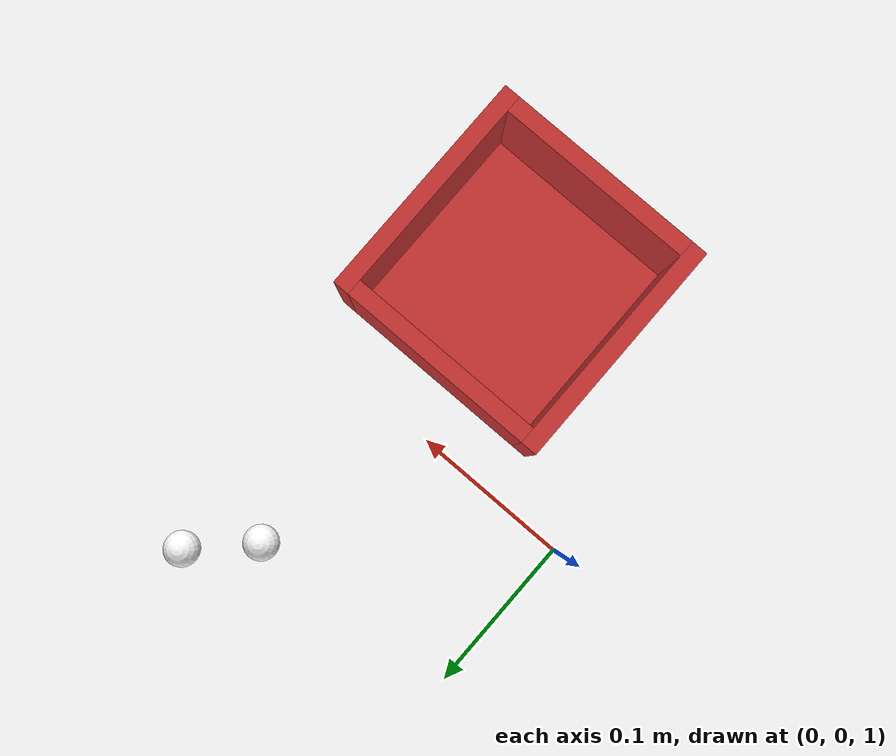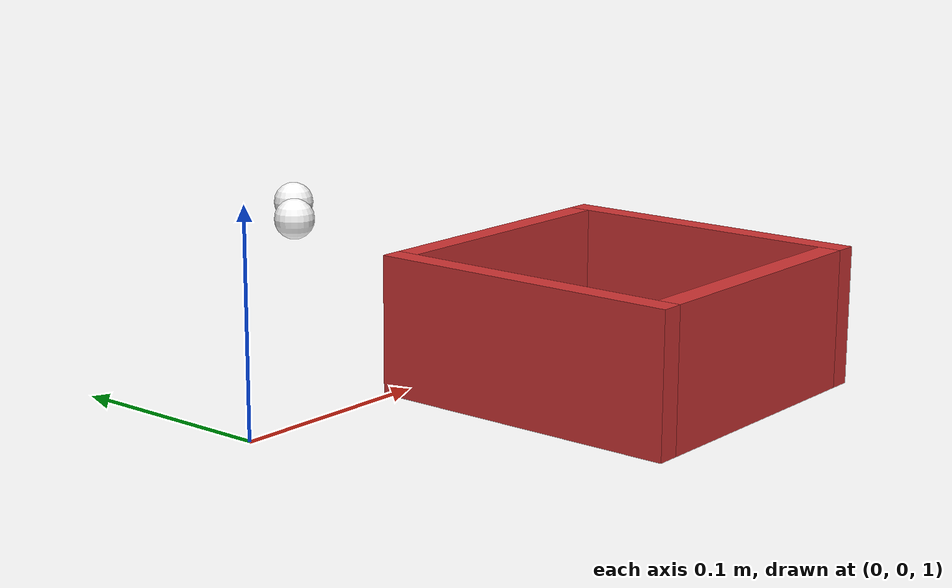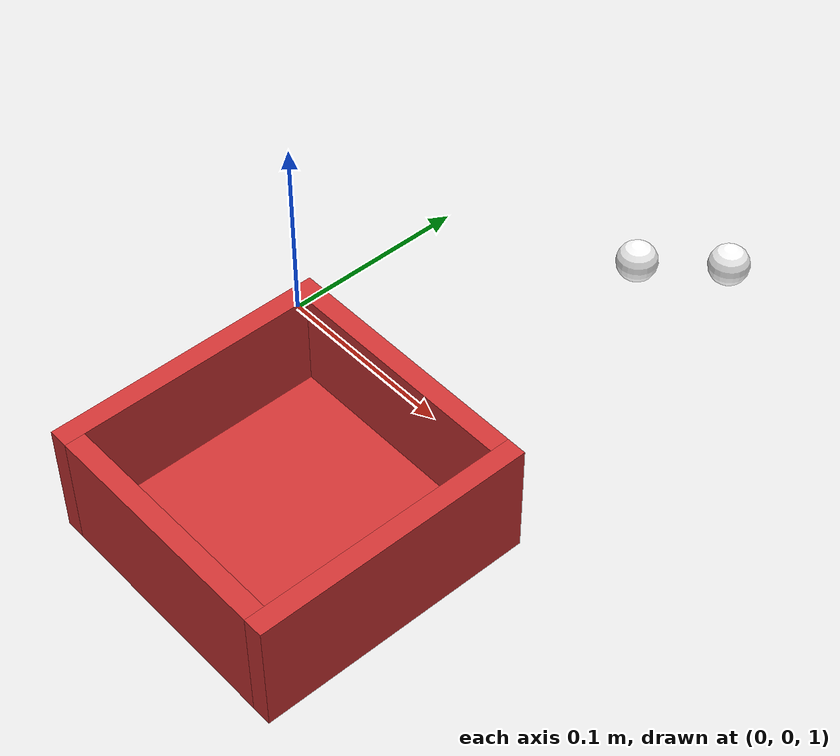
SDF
<sdf version="1.7">
 <world name="pick_and_place_balls">
  <physics name="1ms" type="ignored">
   <max_step_size>0.001</max_step_size>
   <real_time_factor>1.0</real_time_factor>
  </physics>
  <plugin filename="gz-sim-physics-system" name="gz::sim::systems::Physics"/>
  <plugin filename="gz-sim-user-commands-system" name="gz::sim::systems::UserCommands"/>
  <plugin filename="gz-sim-scene-broadcaster-system" name="gz::sim::systems::SceneBroadcaster"/>
  <plugin filename="gz-sim-sensors-system" name="gz::sim::systems::Sensors">
   <render_engine>ogre2</render_engine>
  </plugin>
  <include><uri>https://fuel.gazebosim.org/1.0/OpenRobotics/models/Ground Plane</uri></include>
  <include><uri>https://fuel.gazebosim.org/1.0/OpenRobotics/models/Sun</uri></include>
  <model name="empty_bowl">
   <pose>0.12 -0.10 1.02 0 0 0</pose>
   <static>true</static>
   <link name="bowl_link">
    <visual name="floor_visual">
     <geometry><box><size>0.12 0.12 0.01</size></box></geometry>
     <material><ambient>0.8 0.2 0.2 1</ambient><diffuse>0.8 0.2 0.2 1</diffuse></material>
    </visual>
    <collision name="floor_collision"><geometry><box><size>0.12 0.12 0.01</size></box></geometry></collision>
    <visual name="wall1_visual">
     <pose>0.065 0 0.025 0 0 0</pose>
     <geometry><box><size>0.01 0.14 0.06</size></box></geometry>
     <material><ambient>0.8 0.2 0.2 1</ambient><diffuse>0.8 0.2 0.2 1</diffuse></material>
    </visual>
    <collision name="wall1_collision">
     <pose>0.065 0 0.025 0 0 0</pose>
     <geometry><box><size>0.01 0.14 0.06</size></box></geometry>
    </collision>
    <visual name="wall2_visual">
     <pose>-0.065 0 0.025 0 0 0</pose>
     <geometry><box><size>0.01 0.14 0.06</size></box></geometry>
     <material><ambient>0.8 0.2 0.2 1</ambient><diffuse>0.8 0.2 0.2 1</diffuse></material>
    </visual>
    <collision name="wall2_collision">
     <pose>-0.065 0 0.025 0 0 0</pose>
     <geometry><box><size>0.01 0.14 0.06</size></box></geometry>
    </collision>
    <visual name="wall3_visual">
     <pose>0 0.065 0.025 0 0 0</pose>
     <geometry><box><size>0.12 0.01 0.06</size></box></geometry>
     <material><ambient>0.8 0.2 0.2 1</ambient><diffuse>0.8 0.2 0.2 1</diffuse></material>
    </visual>
    <collision name="wall3_collision">
     <pose>0 0.065 0.025 0 0 0</pose>
     <geometry><box><size>0.12 0.01 0.06</size></box></geometry>
    </collision>
    <visual name="wall4_visual">
     <pose>0 -0.065 0.025 0 0 0</pose>
     <geometry><box><size>0.12 0.01 0.06</size></box></geometry>
     <material><ambient>0.8 0.2 0.2 1</ambient><diffuse>0.8 0.2 0.2 1</diffuse></material>
    </visual>
    <collision name="wall4_collision">
     <pose>0 -0.065 0.025 0 0 0</pose>
     <geometry><box><size>0.12 0.01 0.06</size></box></geometry>
    </collision>
   </link>
  </model>
  <model name="ball_0">
   <pose>0.16 0.13 1.06 0 0 0</pose>
   <link name="ball_link">
    <inertial>
     <mass>0.005</mass>
     <inertia><ixx>0.00001</ixx><iyy>0.00001</iyy><izz>0.00001</izz></inertia>
    </inertial>
    <visual name="ball_visual">
     <geometry><sphere><radius>0.01</radius></sphere></geometry>
     <material><ambient>1 1 1 1</ambient><diffuse>1 1 1 1</diffuse><specular>0.5 0.5 0.5 1</specular></material>
    </visual>
    <collision name="ball_collision">
     <geometry><sphere><radius>0.01</radius></sphere></geometry>
     <surface>
      <friction><ode><mu>10.0</mu><mu2>10.0</mu2></ode></friction>
      <bounce><restitution_coefficient>0.6</restitution_coefficient></bounce>
     </surface>
    </collision>
   </link>
  </model>
  <model name="ball_1">
   <pose>0.13 0.10 1.06 0 0 0</pose>
   <link name="ball_link">
    <inertial>
     <mass>0.005</mass>
     <inertia><ixx>0.00001</ixx><iyy>0.00001</iyy><izz>0.00001</izz></inertia>
    </inertial>
    <visual name="ball_visual">
     <geometry><sphere><radius>0.010</radius></sphere></geometry>
     <material><ambient>1 1 1 1</ambient><diffuse>1 1 1 1</diffuse><specular>0.5 0.5 0.5 1</specular></material>
    </visual>
    <collision name="ball_collision">
     <geometry><sphere><radius>0.01</radius></sphere></geometry>
     <surface>
      <friction><ode><mu>0.8</mu><mu2>0.8</mu2></ode></friction>
      <bounce><restitution_coefficient>0.3</restitution_coefficient></bounce>
     </surface>
    </collision>
   </link>
  </model>
  <gravity>0 0 -9.8</gravity>
  <magnetic_field>6e-06 2.3e-05 -4.2e-05</magnetic_field>
  <atmosphere type="adiabatic"/>
  <scene><ambient>0.6 0.6 0.6 1</ambient><background>0.7 0.7 0.7 1</background><shadows>1</shadows></scene>
 </world>
</sdf>
